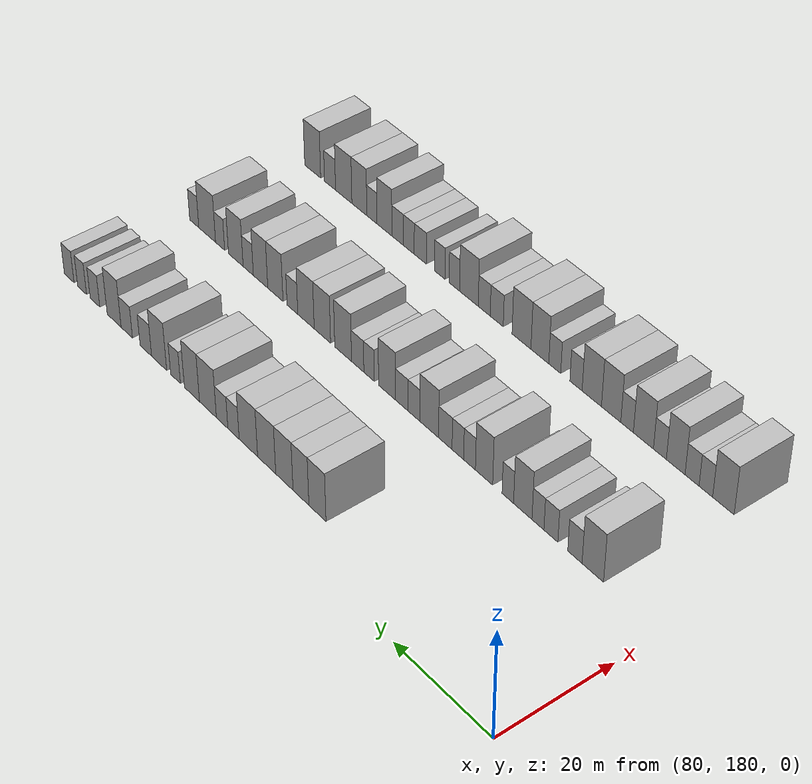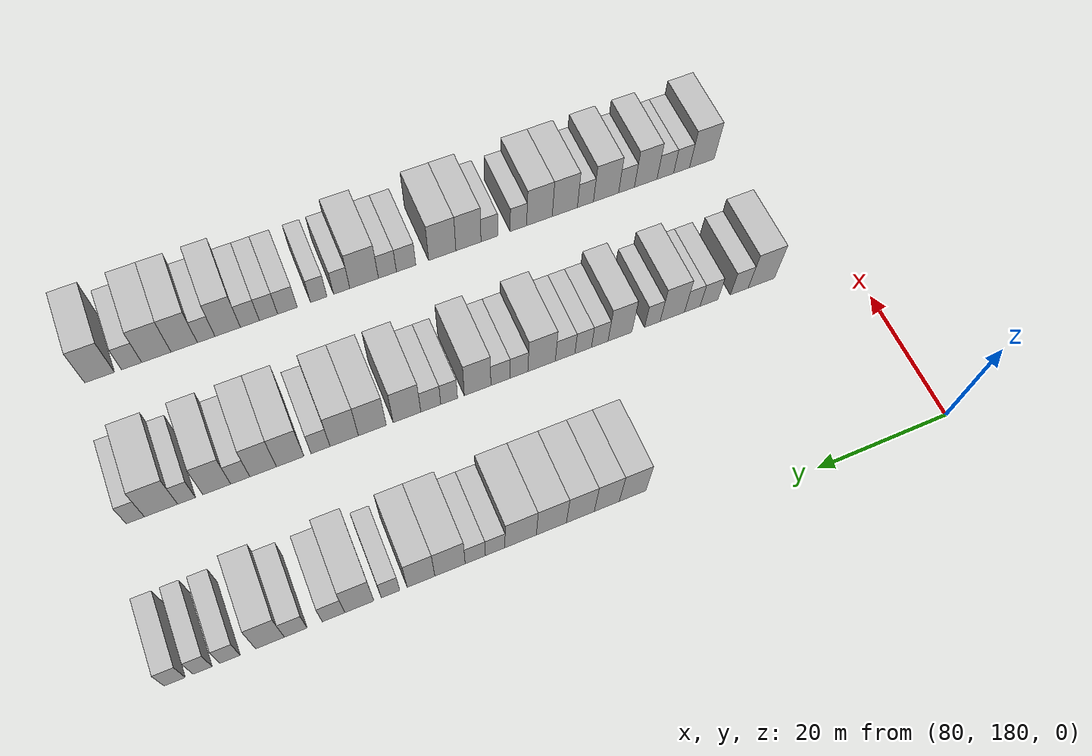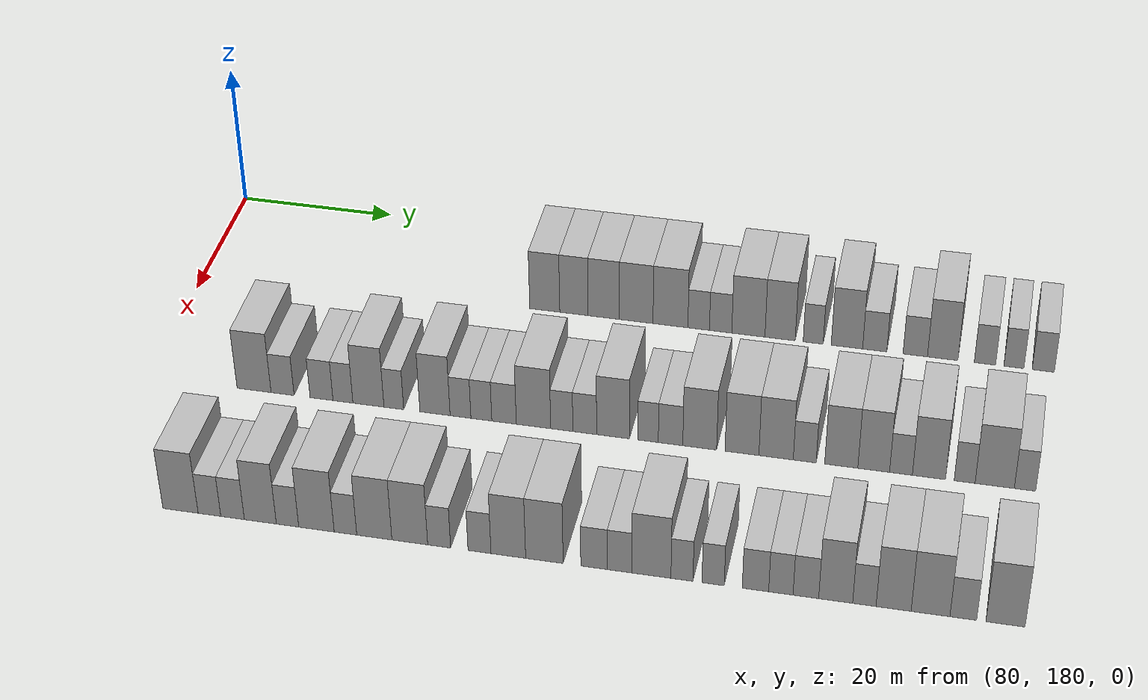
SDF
<sdf version="1.6">
 <world name="default">
  <model name="building_708">
   <static>1</static>
   <pose>91.0000 224.4821 0 0.000000 0.000000 0.000000</pose>
   <link name="link">
    <pose>0 0 4.50 0 0 0</pose>
    <collision name="collision"><geometry><box><size>10.0000 3.8679 9.0000</size></box></geometry></collision>
    <visual name="visual">
     <cast_shadows>0</cast_shadows>
     <geometry><box><size>10.0000 3.8679 9.0000</size></box></geometry>
     <material>
      <script>
       <uri>model://HANNAS_wall/materials/scripts</uri>
       <uri>model://HANNAS_wall/materials/textures</uri>
       <name>vrc/HANNAS_wall</name>
      </script>
     </material>
    </visual>
   </link>
  </model>
  <model name="building_709">
   <static>1</static>
   <pose>91.0000 228.2346 0 0.000000 0.000000 0.000000</pose>
   <link name="link">
    <pose>0 0 4.50 0 0 0</pose>
    <collision name="collision"><geometry><box><size>10.0000 3.6372 9.0000</size></box></geometry></collision>
    <visual name="visual">
     <cast_shadows>0</cast_shadows>
     <geometry><box><size>10.0000 3.6372 9.0000</size></box></geometry>
     <material>
      <script>
       <uri>model://HANNAS_wall/materials/scripts</uri>
       <uri>model://HANNAS_wall/materials/textures</uri>
       <name>vrc/HANNAS_wall</name>
      </script>
     </material>
    </visual>
   </link>
  </model>
  <model name="building_710">
   <static>1</static>
   <pose>91.0000 232.0588 0 0.000000 0.000000 0.000000</pose>
   <link name="link">
    <pose>0 0 4.50 0 0 0</pose>
    <collision name="collision"><geometry><box><size>10.0000 4.0114 9.0000</size></box></geometry></collision>
    <visual name="visual">
     <cast_shadows>0</cast_shadows>
     <geometry><box><size>10.0000 4.0114 9.0000</size></box></geometry>
     <material>
      <script>
       <uri>model://HANNAS_wall/materials/scripts</uri>
       <uri>model://HANNAS_wall/materials/textures</uri>
       <name>vrc/HANNAS_wall</name>
      </script>
     </material>
    </visual>
   </link>
  </model>
  <model name="building_711">
   <static>1</static>
   <pose>91.0000 236.1987 0 0.000000 0.000000 0.000000</pose>
   <link name="link">
    <pose>0 0 4.50 0 0 0</pose>
    <collision name="collision"><geometry><box><size>10.0000 4.2684 9.0000</size></box></geometry></collision>
    <visual name="visual">
     <cast_shadows>0</cast_shadows>
     <geometry><box><size>10.0000 4.2684 9.0000</size></box></geometry>
     <material>
      <script>
       <uri>model://HANNAS_wall/materials/scripts</uri>
       <uri>model://HANNAS_wall/materials/textures</uri>
       <name>vrc/HANNAS_wall</name>
      </script>
     </material>
    </visual>
   </link>
  </model>
  <model name="building_712">
   <static>1</static>
   <pose>91.0000 240.5437 0 0.000000 0.000000 0.000000</pose>
   <link name="link">
    <pose>0 0 4.50 0 0 0</pose>
    <collision name="collision"><geometry><box><size>10.0000 4.4215 9.0000</size></box></geometry></collision>
    <visual name="visual">
     <cast_shadows>0</cast_shadows>
     <geometry><box><size>10.0000 4.4215 9.0000</size></box></geometry>
     <material>
      <script>
       <uri>model://HANNAS_wall/materials/scripts</uri>
       <uri>model://HANNAS_wall/materials/textures</uri>
       <name>vrc/HANNAS_wall</name>
      </script>
     </material>
    </visual>
   </link>
  </model>
  <model name="building_713">
   <static>1</static>
   <pose>91.0000 244.1159 0 0.000000 0.000000 0.000000</pose>
   <link name="link">
    <pose>0 0 3.00 0 0 0</pose>
    <collision name="collision"><geometry><box><size>10.0000 2.7228 6.0000</size></box></geometry></collision>
    <visual name="visual">
     <cast_shadows>0</cast_shadows>
     <geometry><box><size>10.0000 2.7228 6.0000</size></box></geometry>
     <material>
      <script>
       <uri>model://HANNAS_wall/materials/scripts</uri>
       <uri>model://HANNAS_wall/materials/textures</uri>
       <name>vrc/HANNAS_wall</name>
      </script>
     </material>
    </visual>
   </link>
  </model>
  <model name="building_714">
   <static>1</static>
   <pose>91.0000 246.8818 0 0.000000 0.000000 0.000000</pose>
   <link name="link">
    <pose>0 0 3.00 0 0 0</pose>
    <collision name="collision"><geometry><box><size>10.0000 2.8090 6.0000</size></box></geometry></collision>
    <visual name="visual">
     <cast_shadows>0</cast_shadows>
     <geometry><box><size>10.0000 2.8090 6.0000</size></box></geometry>
     <material>
      <script>
       <uri>model://HANNAS_wall/materials/scripts</uri>
       <uri>model://HANNAS_wall/materials/textures</uri>
       <name>vrc/HANNAS_wall</name>
      </script>
     </material>
    </visual>
   </link>
  </model>
  <model name="building_715">
   <static>1</static>
   <pose>91.0000 250.3720 0 0.000000 0.000000 0.000000</pose>
   <link name="link">
    <pose>0 0 4.50 0 0 0</pose>
    <collision name="collision"><geometry><box><size>10.0000 4.1713 9.0000</size></box></geometry></collision>
    <visual name="visual">
     <cast_shadows>0</cast_shadows>
     <geometry><box><size>10.0000 4.1713 9.0000</size></box></geometry>
     <material>
      <script>
       <uri>model://HANNAS_wall/materials/scripts</uri>
       <uri>model://HANNAS_wall/materials/textures</uri>
       <name>vrc/HANNAS_wall</name>
      </script>
     </material>
    </visual>
   </link>
  </model>
  <model name="building_716">
   <static>1</static>
   <pose>91.0000 254.3484 0 0.000000 0.000000 0.000000</pose>
   <link name="link">
    <pose>0 0 4.50 0 0 0</pose>
    <collision name="collision"><geometry><box><size>10.0000 3.7815 9.0000</size></box></geometry></collision>
    <visual name="visual">
     <cast_shadows>0</cast_shadows>
     <geometry><box><size>10.0000 3.7815 9.0000</size></box></geometry>
     <material>
      <script>
       <uri>model://HANNAS_wall/materials/scripts</uri>
       <uri>model://HANNAS_wall/materials/textures</uri>
       <name>vrc/HANNAS_wall</name>
      </script>
     </material>
    </visual>
   </link>
  </model>
  <model name="building_717">
   <static>1</static>
   <pose>91.0000 258.4851 0 0.000000 0.000000 0.000000</pose>
   <link name="link">
    <pose>0 0 3.00 0 0 0</pose>
    <collision name="collision"><geometry><box><size>10.0000 2.4918 6.0000</size></box></geometry></collision>
    <visual name="visual">
     <cast_shadows>0</cast_shadows>
     <geometry><box><size>10.0000 2.4918 6.0000</size></box></geometry>
     <material>
      <script>
       <uri>model://HANNAS_wall/materials/scripts</uri>
       <uri>model://HANNAS_wall/materials/textures</uri>
       <name>vrc/HANNAS_wall</name>
      </script>
     </material>
    </visual>
   </link>
  </model>
  <model name="building_718">
   <static>1</static>
   <pose>91.0000 262.6755 0 0.000000 0.000000 0.000000</pose>
   <link name="link">
    <pose>0 0 4.50 0 0 0</pose>
    <collision name="collision"><geometry><box><size>10.0000 3.8889 9.0000</size></box></geometry></collision>
    <visual name="visual">
     <cast_shadows>0</cast_shadows>
     <geometry><box><size>10.0000 3.8889 9.0000</size></box></geometry>
     <material>
      <script>
       <uri>model://HANNAS_wall/materials/scripts</uri>
       <uri>model://HANNAS_wall/materials/textures</uri>
       <name>vrc/HANNAS_wall</name>
      </script>
     </material>
    </visual>
   </link>
  </model>
  <model name="building_719">
   <static>1</static>
   <pose>91.0000 266.1180 0 0.000000 0.000000 0.000000</pose>
   <link name="link">
    <pose>0 0 3.00 0 0 0</pose>
    <collision name="collision"><geometry><box><size>10.0000 2.9961 6.0000</size></box></geometry></collision>
    <visual name="visual">
     <cast_shadows>0</cast_shadows>
     <geometry><box><size>10.0000 2.9961 6.0000</size></box></geometry>
     <material>
      <script>
       <uri>model://HANNAS_wall/materials/scripts</uri>
       <uri>model://HANNAS_wall/materials/textures</uri>
       <name>vrc/HANNAS_wall</name>
      </script>
     </material>
    </visual>
   </link>
  </model>
  <model name="building_720">
   <static>1</static>
   <pose>91.0000 271.1153 0 0.000000 0.000000 0.000000</pose>
   <link name="link">
    <pose>0 0 3.00 0 0 0</pose>
    <collision name="collision"><geometry><box><size>10.0000 2.9987 6.0000</size></box></geometry></collision>
    <visual name="visual">
     <cast_shadows>0</cast_shadows>
     <geometry><box><size>10.0000 2.9987 6.0000</size></box></geometry>
     <material>
      <script>
       <uri>model://HANNAS_wall/materials/scripts</uri>
       <uri>model://HANNAS_wall/materials/textures</uri>
       <name>vrc/HANNAS_wall</name>
      </script>
     </material>
    </visual>
   </link>
  </model>
  <model name="building_721">
   <static>1</static>
   <pose>91.0000 274.4819 0 0.000000 0.000000 0.000000</pose>
   <link name="link">
    <pose>0 0 4.50 0 0 0</pose>
    <collision name="collision"><geometry><box><size>10.0000 3.7346 9.0000</size></box></geometry></collision>
    <visual name="visual">
     <cast_shadows>0</cast_shadows>
     <geometry><box><size>10.0000 3.7346 9.0000</size></box></geometry>
     <material>
      <script>
       <uri>model://HANNAS_wall/materials/scripts</uri>
       <uri>model://HANNAS_wall/materials/textures</uri>
       <name>vrc/HANNAS_wall</name>
      </script>
     </material>
    </visual>
   </link>
  </model>
  <model name="building_722">
   <static>1</static>
   <pose>91.0000 279.6516 0 0.000000 0.000000 0.000000</pose>
   <link name="link">
    <pose>0 0 3.00 0 0 0</pose>
    <collision name="collision"><geometry><box><size>10.0000 2.6047 6.0000</size></box></geometry></collision>
    <visual name="visual">
     <cast_shadows>0</cast_shadows>
     <geometry><box><size>10.0000 2.6047 6.0000</size></box></geometry>
     <material>
      <script>
       <uri>model://HANNAS_wall/materials/scripts</uri>
       <uri>model://HANNAS_wall/materials/textures</uri>
       <name>vrc/HANNAS_wall</name>
      </script>
     </material>
    </visual>
   </link>
  </model>
  <model name="building_723">
   <static>1</static>
   <pose>91.0000 283.1704 0 0.000000 0.000000 0.000000</pose>
   <link name="link">
    <pose>0 0 3.00 0 0 0</pose>
    <collision name="collision"><geometry><box><size>10.0000 2.4330 6.0000</size></box></geometry></collision>
    <visual name="visual">
     <cast_shadows>0</cast_shadows>
     <geometry><box><size>10.0000 2.4330 6.0000</size></box></geometry>
     <material>
      <script>
       <uri>model://HANNAS_wall/materials/scripts</uri>
       <uri>model://HANNAS_wall/materials/textures</uri>
       <name>vrc/HANNAS_wall</name>
      </script>
     </material>
    </visual>
   </link>
  </model>
  <model name="building_724">
   <static>1</static>
   <pose>91.0000 286.7248 0 0.000000 0.000000 0.000000</pose>
   <link name="link">
    <pose>0 0 3.00 0 0 0</pose>
    <collision name="collision"><geometry><box><size>10.0000 2.6757 6.0000</size></box></geometry></collision>
    <visual name="visual">
     <cast_shadows>0</cast_shadows>
     <geometry><box><size>10.0000 2.6757 6.0000</size></box></geometry>
     <material>
      <script>
       <uri>model://HANNAS_wall/materials/scripts</uri>
       <uri>model://HANNAS_wall/materials/textures</uri>
       <name>vrc/HANNAS_wall</name>
      </script>
     </material>
    </visual>
   </link>
  </model>
  <model name="building_893">
   <static>1</static>
   <pose>113.0000 193.4096 0 0.000000 0.000000 0.000000</pose>
   <link name="link">
    <pose>0 0 4.50 0 0 0</pose>
    <collision name="collision"><geometry><box><size>10.0000 4.2824 9.0000</size></box></geometry></collision>
    <visual name="visual">
     <cast_shadows>0</cast_shadows>
     <geometry><box><size>10.0000 4.2824 9.0000</size></box></geometry>
     <material>
      <script>
       <uri>model://HANNAS_wall/materials/scripts</uri>
       <uri>model://HANNAS_wall/materials/textures</uri>
       <name>vrc/HANNAS_wall</name>
      </script>
     </material>
    </visual>
   </link>
  </model>
  <model name="building_894">
   <static>1</static>
   <pose>113.0000 196.9936 0 0.000000 0.000000 0.000000</pose>
   <link name="link">
    <pose>0 0 3.00 0 0 0</pose>
    <collision name="collision"><geometry><box><size>10.0000 2.8856 6.0000</size></box></geometry></collision>
    <visual name="visual">
     <cast_shadows>0</cast_shadows>
     <geometry><box><size>10.0000 2.8856 6.0000</size></box></geometry>
     <material>
      <script>
       <uri>model://HANNAS_wall/materials/scripts</uri>
       <uri>model://HANNAS_wall/materials/textures</uri>
       <name>vrc/HANNAS_wall</name>
      </script>
     </material>
    </visual>
   </link>
  </model>
  <model name="building_895">
   <static>1</static>
   <pose>113.0000 201.8690 0 0.000000 0.000000 0.000000</pose>
   <link name="link">
    <pose>0 0 3.00 0 0 0</pose>
    <collision name="collision"><geometry><box><size>10.0000 2.8654 6.0000</size></box></geometry></collision>
    <visual name="visual">
     <cast_shadows>0</cast_shadows>
     <geometry><box><size>10.0000 2.8654 6.0000</size></box></geometry>
     <material>
      <script>
       <uri>model://HANNAS_wall/materials/scripts</uri>
       <uri>model://HANNAS_wall/materials/textures</uri>
       <name>vrc/HANNAS_wall</name>
      </script>
     </material>
    </visual>
   </link>
  </model>
  <model name="building_896">
   <static>1</static>
   <pose>113.0000 204.5402 0 0.000000 0.000000 0.000000</pose>
   <link name="link">
    <pose>0 0 3.00 0 0 0</pose>
    <collision name="collision"><geometry><box><size>10.0000 2.4771 6.0000</size></box></geometry></collision>
    <visual name="visual">
     <cast_shadows>0</cast_shadows>
     <geometry><box><size>10.0000 2.4771 6.0000</size></box></geometry>
     <material>
      <script>
       <uri>model://HANNAS_wall/materials/scripts</uri>
       <uri>model://HANNAS_wall/materials/textures</uri>
       <name>vrc/HANNAS_wall</name>
      </script>
     </material>
    </visual>
   </link>
  </model>
  <model name="building_897">
   <static>1</static>
   <pose>113.0000 207.7073 0 0.000000 0.000000 0.000000</pose>
   <link name="link">
    <pose>0 0 4.50 0 0 0</pose>
    <collision name="collision"><geometry><box><size>10.0000 3.8570 9.0000</size></box></geometry></collision>
    <visual name="visual">
     <cast_shadows>0</cast_shadows>
     <geometry><box><size>10.0000 3.8570 9.0000</size></box></geometry>
     <material>
      <script>
       <uri>model://HANNAS_wall/materials/scripts</uri>
       <uri>model://HANNAS_wall/materials/textures</uri>
       <name>vrc/HANNAS_wall</name>
      </script>
     </material>
    </visual>
   </link>
  </model>
  <model name="building_898">
   <static>1</static>
   <pose>113.0000 210.8564 0 0.000000 0.000000 0.000000</pose>
   <link name="link">
    <pose>0 0 3.00 0 0 0</pose>
    <collision name="collision"><geometry><box><size>10.0000 2.4413 6.0000</size></box></geometry></collision>
    <visual name="visual">
     <cast_shadows>0</cast_shadows>
     <geometry><box><size>10.0000 2.4413 6.0000</size></box></geometry>
     <material>
      <script>
       <uri>model://HANNAS_wall/materials/scripts</uri>
       <uri>model://HANNAS_wall/materials/textures</uri>
       <name>vrc/HANNAS_wall</name>
      </script>
     </material>
    </visual>
   </link>
  </model>
  <model name="building_899">
   <static>1</static>
   <pose>113.0000 215.9366 0 0.000000 0.000000 0.000000</pose>
   <link name="link">
    <pose>0 0 4.50 0 0 0</pose>
    <collision name="collision"><geometry><box><size>10.0000 3.7191 9.0000</size></box></geometry></collision>
    <visual name="visual">
     <cast_shadows>0</cast_shadows>
     <geometry><box><size>10.0000 3.7191 9.0000</size></box></geometry>
     <material>
      <script>
       <uri>model://HANNAS_wall/materials/scripts</uri>
       <uri>model://HANNAS_wall/materials/textures</uri>
       <name>vrc/HANNAS_wall</name>
      </script>
     </material>
    </visual>
   </link>
  </model>
  <model name="building_900">
   <static>1</static>
   <pose>113.0000 219.0727 0 0.000000 0.000000 0.000000</pose>
   <link name="link">
    <pose>0 0 3.00 0 0 0</pose>
    <collision name="collision"><geometry><box><size>10.0000 2.5531 6.0000</size></box></geometry></collision>
    <visual name="visual">
     <cast_shadows>0</cast_shadows>
     <geometry><box><size>10.0000 2.5531 6.0000</size></box></geometry>
     <material>
      <script>
       <uri>model://HANNAS_wall/materials/scripts</uri>
       <uri>model://HANNAS_wall/materials/textures</uri>
       <name>vrc/HANNAS_wall</name>
      </script>
     </material>
    </visual>
   </link>
  </model>
  <model name="building_901">
   <static>1</static>
   <pose>113.0000 221.6271 0 0.000000 0.000000 0.000000</pose>
   <link name="link">
    <pose>0 0 3.00 0 0 0</pose>
    <collision name="collision"><geometry><box><size>10.0000 2.5555 6.0000</size></box></geometry></collision>
    <visual name="visual">
     <cast_shadows>0</cast_shadows>
     <geometry><box><size>10.0000 2.5555 6.0000</size></box></geometry>
     <material>
      <script>
       <uri>model://HANNAS_wall/materials/scripts</uri>
       <uri>model://HANNAS_wall/materials/textures</uri>
       <name>vrc/HANNAS_wall</name>
      </script>
     </material>
    </visual>
   </link>
  </model>
  <model name="building_902">
   <static>1</static>
   <pose>113.0000 224.3988 0 0.000000 0.000000 0.000000</pose>
   <link name="link">
    <pose>0 0 3.00 0 0 0</pose>
    <collision name="collision"><geometry><box><size>10.0000 2.9880 6.0000</size></box></geometry></collision>
    <visual name="visual">
     <cast_shadows>0</cast_shadows>
     <geometry><box><size>10.0000 2.9880 6.0000</size></box></geometry>
     <material>
      <script>
       <uri>model://HANNAS_wall/materials/scripts</uri>
       <uri>model://HANNAS_wall/materials/textures</uri>
       <name>vrc/HANNAS_wall</name>
      </script>
     </material>
    </visual>
   </link>
  </model>
  <model name="building_903">
   <static>1</static>
   <pose>113.0000 227.9836 0 0.000000 0.000000 0.000000</pose>
   <link name="link">
    <pose>0 0 4.50 0 0 0</pose>
    <collision name="collision"><geometry><box><size>10.0000 4.1815 9.0000</size></box></geometry></collision>
    <visual name="visual">
     <cast_shadows>0</cast_shadows>
     <geometry><box><size>10.0000 4.1815 9.0000</size></box></geometry>
     <material>
      <script>
       <uri>model://HANNAS_wall/materials/scripts</uri>
       <uri>model://HANNAS_wall/materials/textures</uri>
       <name>vrc/HANNAS_wall</name>
      </script>
     </material>
    </visual>
   </link>
  </model>
  <model name="building_904">
   <static>1</static>
   <pose>113.0000 231.4147 0 0.000000 0.000000 0.000000</pose>
   <link name="link">
    <pose>0 0 3.00 0 0 0</pose>
    <collision name="collision"><geometry><box><size>10.0000 2.6807 6.0000</size></box></geometry></collision>
    <visual name="visual">
     <cast_shadows>0</cast_shadows>
     <geometry><box><size>10.0000 2.6807 6.0000</size></box></geometry>
     <material>
      <script>
       <uri>model://HANNAS_wall/materials/scripts</uri>
       <uri>model://HANNAS_wall/materials/textures</uri>
       <name>vrc/HANNAS_wall</name>
      </script>
     </material>
    </visual>
   </link>
  </model>
  <model name="building_905">
   <static>1</static>
   <pose>113.0000 234.1908 0 0.000000 0.000000 0.000000</pose>
   <link name="link">
    <pose>0 0 3.00 0 0 0</pose>
    <collision name="collision"><geometry><box><size>10.0000 2.8715 6.0000</size></box></geometry></collision>
    <visual name="visual">
     <cast_shadows>0</cast_shadows>
     <geometry><box><size>10.0000 2.8715 6.0000</size></box></geometry>
     <material>
      <script>
       <uri>model://HANNAS_wall/materials/scripts</uri>
       <uri>model://HANNAS_wall/materials/textures</uri>
       <name>vrc/HANNAS_wall</name>
      </script>
     </material>
    </visual>
   </link>
  </model>
  <model name="building_906">
   <static>1</static>
   <pose>113.0000 237.5955 0 0.000000 0.000000 0.000000</pose>
   <link name="link">
    <pose>0 0 4.50 0 0 0</pose>
    <collision name="collision"><geometry><box><size>10.0000 3.9378 9.0000</size></box></geometry></collision>
    <visual name="visual">
     <cast_shadows>0</cast_shadows>
     <geometry><box><size>10.0000 3.9378 9.0000</size></box></geometry>
     <material>
      <script>
       <uri>model://HANNAS_wall/materials/scripts</uri>
       <uri>model://HANNAS_wall/materials/textures</uri>
       <name>vrc/HANNAS_wall</name>
      </script>
     </material>
    </visual>
   </link>
  </model>
  <model name="building_907">
   <static>1</static>
   <pose>113.0000 241.7954 0 0.000000 0.000000 0.000000</pose>
   <link name="link">
    <pose>0 0 3.00 0 0 0</pose>
    <collision name="collision"><geometry><box><size>10.0000 2.4620 6.0000</size></box></geometry></collision>
    <visual name="visual">
     <cast_shadows>0</cast_shadows>
     <geometry><box><size>10.0000 2.4620 6.0000</size></box></geometry>
     <material>
      <script>
       <uri>model://HANNAS_wall/materials/scripts</uri>
       <uri>model://HANNAS_wall/materials/textures</uri>
       <name>vrc/HANNAS_wall</name>
      </script>
     </material>
    </visual>
   </link>
  </model>
  <model name="building_908">
   <static>1</static>
   <pose>113.0000 244.4884 0 0.000000 0.000000 0.000000</pose>
   <link name="link">
    <pose>0 0 3.00 0 0 0</pose>
    <collision name="collision"><geometry><box><size>10.0000 2.9239 6.0000</size></box></geometry></collision>
    <visual name="visual">
     <cast_shadows>0</cast_shadows>
     <geometry><box><size>10.0000 2.9239 6.0000</size></box></geometry>
     <material>
      <script>
       <uri>model://HANNAS_wall/materials/scripts</uri>
       <uri>model://HANNAS_wall/materials/textures</uri>
       <name>vrc/HANNAS_wall</name>
      </script>
     </material>
    </visual>
   </link>
  </model>
  <model name="building_909">
   <static>1</static>
   <pose>113.0000 247.9622 0 0.000000 0.000000 0.000000</pose>
   <link name="link">
    <pose>0 0 4.50 0 0 0</pose>
    <collision name="collision"><geometry><box><size>10.0000 4.0236 9.0000</size></box></geometry></collision>
    <visual name="visual">
     <cast_shadows>0</cast_shadows>
     <geometry><box><size>10.0000 4.0236 9.0000</size></box></geometry>
     <material>
      <script>
       <uri>model://HANNAS_wall/materials/scripts</uri>
       <uri>model://HANNAS_wall/materials/textures</uri>
       <name>vrc/HANNAS_wall</name>
      </script>
     </material>
    </visual>
   </link>
  </model>
  <model name="building_910">
   <static>1</static>
   <pose>113.0000 252.9769 0 0.000000 0.000000 0.000000</pose>
   <link name="link">
    <pose>0 0 4.50 0 0 0</pose>
    <collision name="collision"><geometry><box><size>10.0000 4.0057 9.0000</size></box></geometry></collision>
    <visual name="visual">
     <cast_shadows>0</cast_shadows>
     <geometry><box><size>10.0000 4.0057 9.0000</size></box></geometry>
     <material>
      <script>
       <uri>model://HANNAS_wall/materials/scripts</uri>
       <uri>model://HANNAS_wall/materials/textures</uri>
       <name>vrc/HANNAS_wall</name>
      </script>
     </material>
    </visual>
   </link>
  </model>
  <model name="building_911">
   <static>1</static>
   <pose>113.0000 257.0053 0 0.000000 0.000000 0.000000</pose>
   <link name="link">
    <pose>0 0 4.50 0 0 0</pose>
    <collision name="collision"><geometry><box><size>10.0000 4.0511 9.0000</size></box></geometry></collision>
    <visual name="visual">
     <cast_shadows>0</cast_shadows>
     <geometry><box><size>10.0000 4.0511 9.0000</size></box></geometry>
     <material>
      <script>
       <uri>model://HANNAS_wall/materials/scripts</uri>
       <uri>model://HANNAS_wall/materials/textures</uri>
       <name>vrc/HANNAS_wall</name>
      </script>
     </material>
    </visual>
   </link>
  </model>
  <model name="building_912">
   <static>1</static>
   <pose>113.0000 260.3727 0 0.000000 0.000000 0.000000</pose>
   <link name="link">
    <pose>0 0 3.00 0 0 0</pose>
    <collision name="collision"><geometry><box><size>10.0000 2.6839 6.0000</size></box></geometry></collision>
    <visual name="visual">
     <cast_shadows>0</cast_shadows>
     <geometry><box><size>10.0000 2.6839 6.0000</size></box></geometry>
     <material>
      <script>
       <uri>model://HANNAS_wall/materials/scripts</uri>
       <uri>model://HANNAS_wall/materials/textures</uri>
       <name>vrc/HANNAS_wall</name>
      </script>
     </material>
    </visual>
   </link>
  </model>
  <model name="building_913">
   <static>1</static>
   <pose>113.0000 264.6523 0 0.000000 0.000000 0.000000</pose>
   <link name="link">
    <pose>0 0 4.50 0 0 0</pose>
    <collision name="collision"><geometry><box><size>10.0000 3.8752 9.0000</size></box></geometry></collision>
    <visual name="visual">
     <cast_shadows>0</cast_shadows>
     <geometry><box><size>10.0000 3.8752 9.0000</size></box></geometry>
     <material>
      <script>
       <uri>model://HANNAS_wall/materials/scripts</uri>
       <uri>model://HANNAS_wall/materials/textures</uri>
       <name>vrc/HANNAS_wall</name>
      </script>
     </material>
    </visual>
   </link>
  </model>
  <model name="building_914">
   <static>1</static>
   <pose>113.0000 268.4351 0 0.000000 0.000000 0.000000</pose>
   <link name="link">
    <pose>0 0 4.50 0 0 0</pose>
    <collision name="collision"><geometry><box><size>10.0000 3.6903 9.0000</size></box></geometry></collision>
    <visual name="visual">
     <cast_shadows>0</cast_shadows>
     <geometry><box><size>10.0000 3.6903 9.0000</size></box></geometry>
     <material>
      <script>
       <uri>model://HANNAS_wall/materials/scripts</uri>
       <uri>model://HANNAS_wall/materials/textures</uri>
       <name>vrc/HANNAS_wall</name>
      </script>
     </material>
    </visual>
   </link>
  </model>
  <model name="building_915">
   <static>1</static>
   <pose>113.0000 271.6024 0 0.000000 0.000000 0.000000</pose>
   <link name="link">
    <pose>0 0 3.00 0 0 0</pose>
    <collision name="collision"><geometry><box><size>10.0000 2.6443 6.0000</size></box></geometry></collision>
    <visual name="visual">
     <cast_shadows>0</cast_shadows>
     <geometry><box><size>10.0000 2.6443 6.0000</size></box></geometry>
     <material>
      <script>
       <uri>model://HANNAS_wall/materials/scripts</uri>
       <uri>model://HANNAS_wall/materials/textures</uri>
       <name>vrc/HANNAS_wall</name>
      </script>
     </material>
    </visual>
   </link>
  </model>
  <model name="building_916">
   <static>1</static>
   <pose>113.0000 274.8383 0 0.000000 0.000000 0.000000</pose>
   <link name="link">
    <pose>0 0 4.50 0 0 0</pose>
    <collision name="collision"><geometry><box><size>10.0000 3.8277 9.0000</size></box></geometry></collision>
    <visual name="visual">
     <cast_shadows>0</cast_shadows>
     <geometry><box><size>10.0000 3.8277 9.0000</size></box></geometry>
     <material>
      <script>
       <uri>model://HANNAS_wall/materials/scripts</uri>
       <uri>model://HANNAS_wall/materials/textures</uri>
       <name>vrc/HANNAS_wall</name>
      </script>
     </material>
    </visual>
   </link>
  </model>
  <model name="building_917">
   <static>1</static>
   <pose>113.0000 278.9577 0 0.000000 0.000000 0.000000</pose>
   <link name="link">
    <pose>0 0 3.00 0 0 0</pose>
    <collision name="collision"><geometry><box><size>10.0000 2.4112 6.0000</size></box></geometry></collision>
    <visual name="visual">
     <cast_shadows>0</cast_shadows>
     <geometry><box><size>10.0000 2.4112 6.0000</size></box></geometry>
     <material>
      <script>
       <uri>model://HANNAS_wall/materials/scripts</uri>
       <uri>model://HANNAS_wall/materials/textures</uri>
       <name>vrc/HANNAS_wall</name>
      </script>
     </material>
    </visual>
   </link>
  </model>
  <model name="building_918">
   <static>1</static>
   <pose>113.0000 282.4096 0 0.000000 0.000000 0.000000</pose>
   <link name="link">
    <pose>0 0 4.50 0 0 0</pose>
    <collision name="collision"><geometry><box><size>10.0000 4.4925 9.0000</size></box></geometry></collision>
    <visual name="visual">
     <cast_shadows>0</cast_shadows>
     <geometry><box><size>10.0000 4.4925 9.0000</size></box></geometry>
     <material>
      <script>
       <uri>model://HANNAS_wall/materials/scripts</uri>
       <uri>model://HANNAS_wall/materials/textures</uri>
       <name>vrc/HANNAS_wall</name>
      </script>
     </material>
    </visual>
   </link>
  </model>
  <model name="building_919">
   <static>1</static>
   <pose>113.0000 285.8765 0 0.000000 0.000000 0.000000</pose>
   <link name="link">
    <pose>0 0 3.00 0 0 0</pose>
    <collision name="collision"><geometry><box><size>10.0000 2.4414 6.0000</size></box></geometry></collision>
    <visual name="visual">
     <cast_shadows>0</cast_shadows>
     <geometry><box><size>10.0000 2.4414 6.0000</size></box></geometry>
     <material>
      <script>
       <uri>model://HANNAS_wall/materials/scripts</uri>
       <uri>model://HANNAS_wall/materials/textures</uri>
       <name>vrc/HANNAS_wall</name>
      </script>
     </material>
    </visual>
   </link>
  </model>
  <model name="building_1085">
   <static>1</static>
   <pose>135.0000 191.7817 0 0.000000 0.000000 0.000000</pose>
   <link name="link">
    <pose>0 0 4.50 0 0 0</pose>
    <collision name="collision"><geometry><box><size>10.0000 4.2024 9.0000</size></box></geometry></collision>
    <visual name="visual">
     <cast_shadows>0</cast_shadows>
     <geometry><box><size>10.0000 4.2024 9.0000</size></box></geometry>
     <material>
      <script>
       <uri>model://HANNAS_wall/materials/scripts</uri>
       <uri>model://HANNAS_wall/materials/textures</uri>
       <name>vrc/HANNAS_wall</name>
      </script>
     </material>
    </visual>
   </link>
  </model>
  <model name="building_1086">
   <static>1</static>
   <pose>135.0000 195.2298 0 0.000000 0.000000 0.000000</pose>
   <link name="link">
    <pose>0 0 3.00 0 0 0</pose>
    <collision name="collision"><geometry><box><size>10.0000 2.6938 6.0000</size></box></geometry></collision>
    <visual name="visual">
     <cast_shadows>0</cast_shadows>
     <geometry><box><size>10.0000 2.6938 6.0000</size></box></geometry>
     <material>
      <script>
       <uri>model://HANNAS_wall/materials/scripts</uri>
       <uri>model://HANNAS_wall/materials/textures</uri>
       <name>vrc/HANNAS_wall</name>
      </script>
     </material>
    </visual>
   </link>
  </model>
  <model name="building_1087">
   <static>1</static>
   <pose>135.0000 197.9736 0 0.000000 0.000000 0.000000</pose>
   <link name="link">
    <pose>0 0 3.00 0 0 0</pose>
    <collision name="collision"><geometry><box><size>10.0000 2.7937 6.0000</size></box></geometry></collision>
    <visual name="visual">
     <cast_shadows>0</cast_shadows>
     <geometry><box><size>10.0000 2.7937 6.0000</size></box></geometry>
     <material>
      <script>
       <uri>model://HANNAS_wall/materials/scripts</uri>
       <uri>model://HANNAS_wall/materials/textures</uri>
       <name>vrc/HANNAS_wall</name>
      </script>
     </material>
    </visual>
   </link>
  </model>
  <model name="building_1088">
   <static>1</static>
   <pose>135.0000 201.2581 0 0.000000 0.000000 0.000000</pose>
   <link name="link">
    <pose>0 0 4.50 0 0 0</pose>
    <collision name="collision"><geometry><box><size>10.0000 3.7754 9.0000</size></box></geometry></collision>
    <visual name="visual">
     <cast_shadows>0</cast_shadows>
     <geometry><box><size>10.0000 3.7754 9.0000</size></box></geometry>
     <material>
      <script>
       <uri>model://HANNAS_wall/materials/scripts</uri>
       <uri>model://HANNAS_wall/materials/textures</uri>
       <name>vrc/HANNAS_wall</name>
      </script>
     </material>
    </visual>
   </link>
  </model>
  <model name="building_1089">
   <static>1</static>
   <pose>135.0000 204.4634 0 0.000000 0.000000 0.000000</pose>
   <link name="link">
    <pose>0 0 3.00 0 0 0</pose>
    <collision name="collision"><geometry><box><size>10.0000 2.6353 6.0000</size></box></geometry></collision>
    <visual name="visual">
     <cast_shadows>0</cast_shadows>
     <geometry><box><size>10.0000 2.6353 6.0000</size></box></geometry>
     <material>
      <script>
       <uri>model://HANNAS_wall/materials/scripts</uri>
       <uri>model://HANNAS_wall/materials/textures</uri>
       <name>vrc/HANNAS_wall</name>
      </script>
     </material>
    </visual>
   </link>
  </model>
  <model name="building_1090">
   <static>1</static>
   <pose>135.0000 207.8571 0 0.000000 0.000000 0.000000</pose>
   <link name="link">
    <pose>0 0 4.50 0 0 0</pose>
    <collision name="collision"><geometry><box><size>10.0000 4.1520 9.0000</size></box></geometry></collision>
    <visual name="visual">
     <cast_shadows>0</cast_shadows>
     <geometry><box><size>10.0000 4.1520 9.0000</size></box></geometry>
     <material>
      <script>
       <uri>model://HANNAS_wall/materials/scripts</uri>
       <uri>model://HANNAS_wall/materials/textures</uri>
       <name>vrc/HANNAS_wall</name>
      </script>
     </material>
    </visual>
   </link>
  </model>
  <model name="building_1091">
   <static>1</static>
   <pose>135.0000 211.2512 0 0.000000 0.000000 0.000000</pose>
   <link name="link">
    <pose>0 0 3.00 0 0 0</pose>
    <collision name="collision"><geometry><box><size>10.0000 2.6362 6.0000</size></box></geometry></collision>
    <visual name="visual">
     <cast_shadows>0</cast_shadows>
     <geometry><box><size>10.0000 2.6362 6.0000</size></box></geometry>
     <material>
      <script>
       <uri>model://HANNAS_wall/materials/scripts</uri>
       <uri>model://HANNAS_wall/materials/textures</uri>
       <name>vrc/HANNAS_wall</name>
      </script>
     </material>
    </visual>
   </link>
  </model>
  <model name="building_1092">
   <static>1</static>
   <pose>135.0000 214.6134 0 0.000000 0.000000 0.000000</pose>
   <link name="link">
    <pose>0 0 4.50 0 0 0</pose>
    <collision name="collision"><geometry><box><size>10.0000 4.0882 9.0000</size></box></geometry></collision>
    <visual name="visual">
     <cast_shadows>0</cast_shadows>
     <geometry><box><size>10.0000 4.0882 9.0000</size></box></geometry>
     <material>
      <script>
       <uri>model://HANNAS_wall/materials/scripts</uri>
       <uri>model://HANNAS_wall/materials/textures</uri>
       <name>vrc/HANNAS_wall</name>
      </script>
     </material>
    </visual>
   </link>
  </model>
  <model name="building_1093">
   <static>1</static>
   <pose>135.0000 218.7303 0 0.000000 0.000000 0.000000</pose>
   <link name="link">
    <pose>0 0 4.50 0 0 0</pose>
    <collision name="collision"><geometry><box><size>10.0000 4.1457 9.0000</size></box></geometry></collision>
    <visual name="visual">
     <cast_shadows>0</cast_shadows>
     <geometry><box><size>10.0000 4.1457 9.0000</size></box></geometry>
     <material>
      <script>
       <uri>model://HANNAS_wall/materials/scripts</uri>
       <uri>model://HANNAS_wall/materials/textures</uri>
       <name>vrc/HANNAS_wall</name>
      </script>
     </material>
    </visual>
   </link>
  </model>
  <model name="building_1094">
   <static>1</static>
   <pose>135.0000 222.1262 0 0.000000 0.000000 0.000000</pose>
   <link name="link">
    <pose>0 0 3.00 0 0 0</pose>
    <collision name="collision"><geometry><box><size>10.0000 2.6461 6.0000</size></box></geometry></collision>
    <visual name="visual">
     <cast_shadows>0</cast_shadows>
     <geometry><box><size>10.0000 2.6461 6.0000</size></box></geometry>
     <material>
      <script>
       <uri>model://HANNAS_wall/materials/scripts</uri>
       <uri>model://HANNAS_wall/materials/textures</uri>
       <name>vrc/HANNAS_wall</name>
      </script>
     </material>
    </visual>
   </link>
  </model>
  <model name="building_1095">
   <static>1</static>
   <pose>135.0000 226.7674 0 0.000000 0.000000 0.000000</pose>
   <link name="link">
    <pose>0 0 3.00 0 0 0</pose>
    <collision name="collision"><geometry><box><size>10.0000 2.6362 6.0000</size></box></geometry></collision>
    <visual name="visual">
     <cast_shadows>0</cast_shadows>
     <geometry><box><size>10.0000 2.6362 6.0000</size></box></geometry>
     <material>
      <script>
       <uri>model://HANNAS_wall/materials/scripts</uri>
       <uri>model://HANNAS_wall/materials/textures</uri>
       <name>vrc/HANNAS_wall</name>
      </script>
     </material>
    </visual>
   </link>
  </model>
  <model name="building_1096">
   <static>1</static>
   <pose>135.0000 230.0677 0 0.000000 0.000000 0.000000</pose>
   <link name="link">
    <pose>0 0 4.50 0 0 0</pose>
    <collision name="collision"><geometry><box><size>10.0000 3.9645 9.0000</size></box></geometry></collision>
    <visual name="visual">
     <cast_shadows>0</cast_shadows>
     <geometry><box><size>10.0000 3.9645 9.0000</size></box></geometry>
     <material>
      <script>
       <uri>model://HANNAS_wall/materials/scripts</uri>
       <uri>model://HANNAS_wall/materials/textures</uri>
       <name>vrc/HANNAS_wall</name>
      </script>
     </material>
    </visual>
   </link>
  </model>
  <model name="building_1097">
   <static>1</static>
   <pose>135.0000 234.1836 0 0.000000 0.000000 0.000000</pose>
   <link name="link">
    <pose>0 0 4.50 0 0 0</pose>
    <collision name="collision"><geometry><box><size>10.0000 4.2675 9.0000</size></box></geometry></collision>
    <visual name="visual">
     <cast_shadows>0</cast_shadows>
     <geometry><box><size>10.0000 4.2675 9.0000</size></box></geometry>
     <material>
      <script>
       <uri>model://HANNAS_wall/materials/scripts</uri>
       <uri>model://HANNAS_wall/materials/textures</uri>
       <name>vrc/HANNAS_wall</name>
      </script>
     </material>
    </visual>
   </link>
  </model>
  <model name="building_1098">
   <static>1</static>
   <pose>135.0000 239.8165 0 0.000000 0.000000 0.000000</pose>
   <link name="link">
    <pose>0 0 3.00 0 0 0</pose>
    <collision name="collision"><geometry><box><size>10.0000 2.9983 6.0000</size></box></geometry></collision>
    <visual name="visual">
     <cast_shadows>0</cast_shadows>
     <geometry><box><size>10.0000 2.9983 6.0000</size></box></geometry>
     <material>
      <script>
       <uri>model://HANNAS_wall/materials/scripts</uri>
       <uri>model://HANNAS_wall/materials/textures</uri>
       <name>vrc/HANNAS_wall</name>
      </script>
     </material>
    </visual>
   </link>
  </model>
  <model name="building_1099">
   <static>1</static>
   <pose>135.0000 242.7039 0 0.000000 0.000000 0.000000</pose>
   <link name="link">
    <pose>0 0 3.00 0 0 0</pose>
    <collision name="collision"><geometry><box><size>10.0000 2.7765 6.0000</size></box></geometry></collision>
    <visual name="visual">
     <cast_shadows>0</cast_shadows>
     <geometry><box><size>10.0000 2.7765 6.0000</size></box></geometry>
     <material>
      <script>
       <uri>model://HANNAS_wall/materials/scripts</uri>
       <uri>model://HANNAS_wall/materials/textures</uri>
       <name>vrc/HANNAS_wall</name>
      </script>
     </material>
    </visual>
   </link>
  </model>
  <model name="building_1100">
   <static>1</static>
   <pose>135.0000 246.2789 0 0.000000 0.000000 0.000000</pose>
   <link name="link">
    <pose>0 0 4.50 0 0 0</pose>
    <collision name="collision"><geometry><box><size>10.0000 4.3735 9.0000</size></box></geometry></collision>
    <visual name="visual">
     <cast_shadows>0</cast_shadows>
     <geometry><box><size>10.0000 4.3735 9.0000</size></box></geometry>
     <material>
      <script>
       <uri>model://HANNAS_wall/materials/scripts</uri>
       <uri>model://HANNAS_wall/materials/textures</uri>
       <name>vrc/HANNAS_wall</name>
      </script>
     </material>
    </visual>
   </link>
  </model>
  <model name="building_1101">
   <static>1</static>
   <pose>135.0000 249.6975 0 0.000000 0.000000 0.000000</pose>
   <link name="link">
    <pose>0 0 3.00 0 0 0</pose>
    <collision name="collision"><geometry><box><size>10.0000 2.4638 6.0000</size></box></geometry></collision>
    <visual name="visual">
     <cast_shadows>0</cast_shadows>
     <geometry><box><size>10.0000 2.4638 6.0000</size></box></geometry>
     <material>
      <script>
       <uri>model://HANNAS_wall/materials/scripts</uri>
       <uri>model://HANNAS_wall/materials/textures</uri>
       <name>vrc/HANNAS_wall</name>
      </script>
     </material>
    </visual>
   </link>
  </model>
  <model name="building_1102">
   <static>1</static>
   <pose>135.0000 253.1716 0 0.000000 0.000000 0.000000</pose>
   <link name="link">
    <pose>0 0 3.00 0 0 0</pose>
    <collision name="collision"><geometry><box><size>10.0000 2.4844 6.0000</size></box></geometry></collision>
    <visual name="visual">
     <cast_shadows>0</cast_shadows>
     <geometry><box><size>10.0000 2.4844 6.0000</size></box></geometry>
     <material>
      <script>
       <uri>model://HANNAS_wall/materials/scripts</uri>
       <uri>model://HANNAS_wall/materials/textures</uri>
       <name>vrc/HANNAS_wall</name>
      </script>
     </material>
    </visual>
   </link>
  </model>
  <model name="building_1103">
   <static>1</static>
   <pose>135.0000 257.8765 0 0.000000 0.000000 0.000000</pose>
   <link name="link">
    <pose>0 0 3.00 0 0 0</pose>
    <collision name="collision"><geometry><box><size>10.0000 2.9253 6.0000</size></box></geometry></collision>
    <visual name="visual">
     <cast_shadows>0</cast_shadows>
     <geometry><box><size>10.0000 2.9253 6.0000</size></box></geometry>
     <material>
      <script>
       <uri>model://HANNAS_wall/materials/scripts</uri>
       <uri>model://HANNAS_wall/materials/textures</uri>
       <name>vrc/HANNAS_wall</name>
      </script>
     </material>
    </visual>
   </link>
  </model>
  <model name="building_1104">
   <static>1</static>
   <pose>135.0000 260.6869 0 0.000000 0.000000 0.000000</pose>
   <link name="link">
    <pose>0 0 3.00 0 0 0</pose>
    <collision name="collision"><geometry><box><size>10.0000 2.6956 6.0000</size></box></geometry></collision>
    <visual name="visual">
     <cast_shadows>0</cast_shadows>
     <geometry><box><size>10.0000 2.6956 6.0000</size></box></geometry>
     <material>
      <script>
       <uri>model://HANNAS_wall/materials/scripts</uri>
       <uri>model://HANNAS_wall/materials/textures</uri>
       <name>vrc/HANNAS_wall</name>
      </script>
     </material>
    </visual>
   </link>
  </model>
  <model name="building_1105">
   <static>1</static>
   <pose>135.0000 263.4440 0 0.000000 0.000000 0.000000</pose>
   <link name="link">
    <pose>0 0 3.00 0 0 0</pose>
    <collision name="collision"><geometry><box><size>10.0000 2.8186 6.0000</size></box></geometry></collision>
    <visual name="visual">
     <cast_shadows>0</cast_shadows>
     <geometry><box><size>10.0000 2.8186 6.0000</size></box></geometry>
     <material>
      <script>
       <uri>model://HANNAS_wall/materials/scripts</uri>
       <uri>model://HANNAS_wall/materials/textures</uri>
       <name>vrc/HANNAS_wall</name>
      </script>
     </material>
    </visual>
   </link>
  </model>
  <model name="building_1106">
   <static>1</static>
   <pose>135.0000 266.7160 0 0.000000 0.000000 0.000000</pose>
   <link name="link">
    <pose>0 0 4.50 0 0 0</pose>
    <collision name="collision"><geometry><box><size>10.0000 3.7255 9.0000</size></box></geometry></collision>
    <visual name="visual">
     <cast_shadows>0</cast_shadows>
     <geometry><box><size>10.0000 3.7255 9.0000</size></box></geometry>
     <material>
      <script>
       <uri>model://HANNAS_wall/materials/scripts</uri>
       <uri>model://HANNAS_wall/materials/textures</uri>
       <name>vrc/HANNAS_wall</name>
      </script>
     </material>
    </visual>
   </link>
  </model>
  <model name="building_1107">
   <static>1</static>
   <pose>135.0000 269.8580 0 0.000000 0.000000 0.000000</pose>
   <link name="link">
    <pose>0 0 3.00 0 0 0</pose>
    <collision name="collision"><geometry><box><size>10.0000 2.5584 6.0000</size></box></geometry></collision>
    <visual name="visual">
     <cast_shadows>0</cast_shadows>
     <geometry><box><size>10.0000 2.5584 6.0000</size></box></geometry>
     <material>
      <script>
       <uri>model://HANNAS_wall/materials/scripts</uri>
       <uri>model://HANNAS_wall/materials/textures</uri>
       <name>vrc/HANNAS_wall</name>
      </script>
     </material>
    </visual>
   </link>
  </model>
  <model name="building_1108">
   <static>1</static>
   <pose>135.0000 273.0451 0 0.000000 0.000000 0.000000</pose>
   <link name="link">
    <pose>0 0 4.50 0 0 0</pose>
    <collision name="collision"><geometry><box><size>10.0000 3.8160 9.0000</size></box></geometry></collision>
    <visual name="visual">
     <cast_shadows>0</cast_shadows>
     <geometry><box><size>10.0000 3.8160 9.0000</size></box></geometry>
     <material>
      <script>
       <uri>model://HANNAS_wall/materials/scripts</uri>
       <uri>model://HANNAS_wall/materials/textures</uri>
       <name>vrc/HANNAS_wall</name>
      </script>
     </material>
    </visual>
   </link>
  </model>
  <model name="building_1109">
   <static>1</static>
   <pose>135.0000 277.0569 0 0.000000 0.000000 0.000000</pose>
   <link name="link">
    <pose>0 0 4.50 0 0 0</pose>
    <collision name="collision"><geometry><box><size>10.0000 4.2076 9.0000</size></box></geometry></collision>
    <visual name="visual">
     <cast_shadows>0</cast_shadows>
     <geometry><box><size>10.0000 4.2076 9.0000</size></box></geometry>
     <material>
      <script>
       <uri>model://HANNAS_wall/materials/scripts</uri>
       <uri>model://HANNAS_wall/materials/textures</uri>
       <name>vrc/HANNAS_wall</name>
      </script>
     </material>
    </visual>
   </link>
  </model>
  <model name="building_1110">
   <static>1</static>
   <pose>135.0000 280.6029 0 0.000000 0.000000 0.000000</pose>
   <link name="link">
    <pose>0 0 3.00 0 0 0</pose>
    <collision name="collision"><geometry><box><size>10.0000 2.8842 6.0000</size></box></geometry></collision>
    <visual name="visual">
     <cast_shadows>0</cast_shadows>
     <geometry><box><size>10.0000 2.8842 6.0000</size></box></geometry>
     <material>
      <script>
       <uri>model://HANNAS_wall/materials/scripts</uri>
       <uri>model://HANNAS_wall/materials/textures</uri>
       <name>vrc/HANNAS_wall</name>
      </script>
     </material>
    </visual>
   </link>
  </model>
  <model name="building_1111">
   <static>1</static>
   <pose>135.0000 285.1447 0 0.000000 0.000000 0.000000</pose>
   <link name="link">
    <pose>0 0 4.50 0 0 0</pose>
    <collision name="collision"><geometry><box><size>10.0000 4.1994 9.0000</size></box></geometry></collision>
    <visual name="visual">
     <cast_shadows>0</cast_shadows>
     <geometry><box><size>10.0000 4.1994 9.0000</size></box></geometry>
     <material>
      <script>
       <uri>model://HANNAS_wall/materials/scripts</uri>
       <uri>model://HANNAS_wall/materials/textures</uri>
       <name>vrc/HANNAS_wall</name>
      </script>
     </material>
    </visual>
   </link>
  </model>
 </world>
</sdf>
